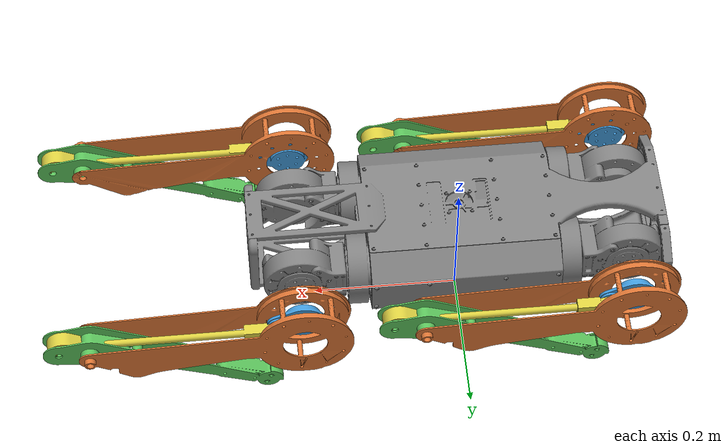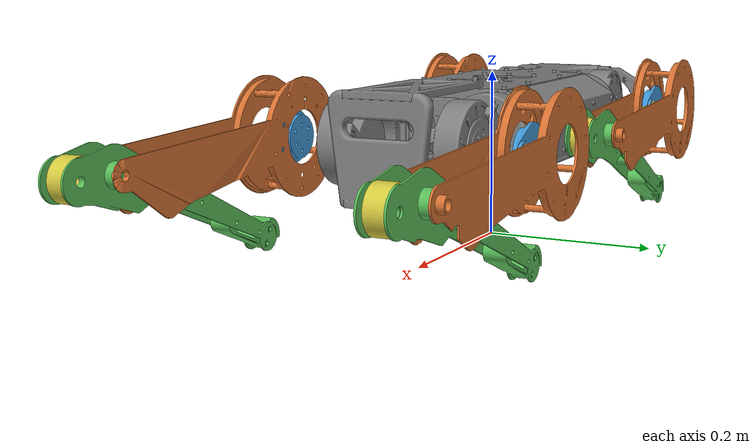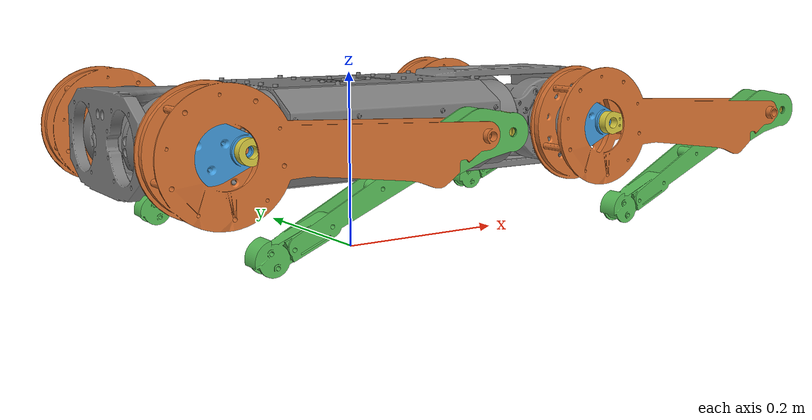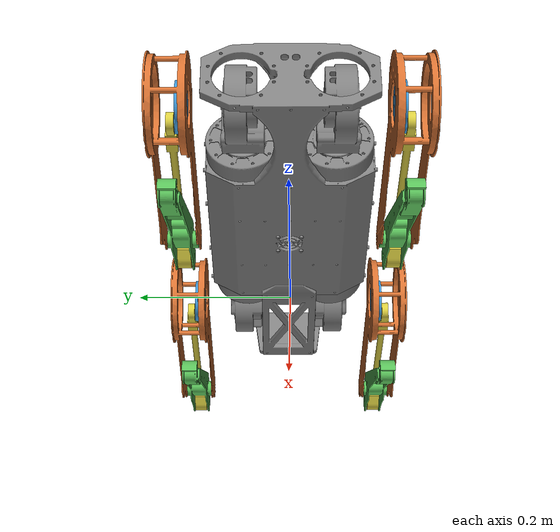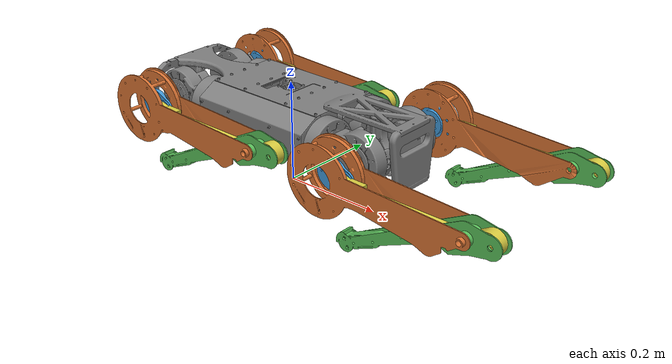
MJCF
<mujoco model="wojtek_legs_v627">
  <compiler angle="radian" autolimits="true" eulerseq="zyx" meshdir="../../meshes" />
  <default>
    <joint armature="0.01" damping="0.3" frictionloss="0.3" limited="true" />
    <geom conaffinity="15" condim="4" contype="1" friction="0.9 0.2 0.2" solref="0.001 2" />
    <motor ctrllimited="true" />
    <equality solref="0.001 2" />
    <default class="visual">
      <geom type="mesh" contype="0" conaffinity="0" group="2" density="0" material="grey" />
    </default>
    <default class="collision">
      <geom type="mesh" group="3" />
    </default>
  </default>
  <asset>
    <mesh name="base_link" file="base_link.stl" />
    <mesh name="first_link" file="first_link.stl" />
    <mesh name="second_link" file="second_link.stl" />
    <material name="grey" rgba="0.5 0.5 0.5 1.0" />
    <mesh name="vis_udo_A" file="legs_v627/vis_udo_A.stl" />
    <mesh name="vis_udo_B" file="legs_v627/vis_udo_B.stl" />
    <mesh name="vis_dzwignia_A" file="legs_v627/vis_dzwignia_A.stl" />
    <mesh name="vis_dzwignia_B" file="legs_v627/vis_dzwignia_B.stl" />
    <mesh name="vis_wodzik_A" file="legs_v627/vis_wodzik_A.stl" />
    <mesh name="vis_wodzik_B" file="legs_v627/vis_wodzik_B.stl" />
    <mesh name="vis_golen_A" file="legs_v627/vis_golen_A.stl" />
    <mesh name="vis_golen_B" file="legs_v627/vis_golen_B.stl" />
    <material name="m_udo" rgba="0.85 0.45 0.20 1" />
    <material name="m_dzwignia" rgba="0.25 0.60 0.85 1" />
    <material name="m_wodzik" rgba="0.85 0.80 0.25 1" />
    <material name="m_golen" rgba="0.35 0.75 0.35 1" />
    <texture name="grid" type="2d" builtin="checker" rgb1=".2 .3 .4" rgb2=".1 .2 .3" width="300" height="300" />
    <material name="grid" texture="grid" texrepeat="8 8" reflectance="0.1" />
  </asset>
  <worldbody>
    <body name="root" pos="0 0 0.08" quat="1 0 0 0">
      <freejoint name="root" />
      <inertial pos="-0.00692690993 7.05821983e-05 0.0601677531" mass="7.54375" diaginertia="0.164006 0.150387 0.0273804" />
      <!-- v6.27: korpus = M_ROBOT_KG 16.350 - nogi 8.806 kg; tensor Wojtka x0.401 -->
      <site name="imu" pos="0 0 0" size="0.00000001" />
      <geom class="visual" name="base_link_visual" mesh="base_link" quat="0 0 0 1" />
      <geom class="collision" name="base_link_collision" mesh="base_link" quat="0 0 0 1" />
      <geom class="visual" name="rear_left_first_link_visual" mesh="first_link" pos="-0.131 0.06 0.06" quat="0 0 -0.707107 0.707107" />
      <geom class="collision" name="rear_left_first_link_collision" mesh="first_link" pos="-0.131 0.06 0.06" quat="0 0 -0.707107 0.707107" />
      <geom class="visual" name="rear_right_first_link_visual" mesh="first_link" pos="-0.131 -0.06 0.06" quat="0 0 -0.707107 0.707107" />
      <geom class="collision" name="rear_right_first_link_collision" mesh="first_link" pos="-0.131 -0.06 0.06" quat="0 0 -0.707107 0.707107" />
      <geom class="visual" name="front_right_first_link_visual" mesh="first_link" pos="0.131 -0.06 0.06" quat="0.707107 -0.707107 0 0" />
      <geom class="collision" name="front_right_first_link_collision" mesh="first_link" pos="0.131 -0.06 0.06" quat="0.707107 -0.707107 0 0" />
      <geom class="visual" name="front_left_first_link_visual" mesh="first_link" pos="0.131 0.06 0.06" quat="0.707107 -0.707107 0 0" />
      <geom class="collision" name="front_left_first_link_collision" mesh="first_link" pos="0.131 0.06 0.06" quat="0.707107 -0.707107 0 0" />
      <body name="rear_left_second_link" pos="-0.162 0.06 0.06" quat="0 0 0.707107 0.707107">
        <inertial diaginertia="0.00075 0.000455 0.000455" mass="0.6" pos="0.055 0 0" quat="0.5 0.5 -0.5 0.5" />
        <joint name="rear_left_first_joint" axis="1 0 0" pos="0 0 0" damping="0.05" frictionloss="0.01" range="-3.1416 3.1416" />
        <geom class="visual" name="rear_left_second_link_visual" mesh="second_link" />
        <geom class="collision" name="rear_left_second_link_collision" mesh="second_link" />
        <body name="rear_left_third_link" pos="0.064 0 0.0668000048" quat="0 0 0 1">
          <inertial pos="0.0394156322 0.000858147547 0.0250979492" mass="1.0898013" fullinertia="0.00113131174 0.00915077731 0.00961974953 -0.000143718167 -9.20316273e-05 -4.05098865e-08" />
          <!-- masa silnikow + mocowania: `third_link` Wojtka (0.6 kg) jako DRUGI inertial nie istnieje w MJCF -> jest DOLICZONA w `props` (patrz RAPORT §2) -->
          <joint name="rear_left_second_joint" axis="0 0 -1" pos="0 0 0" range="-2.69478837 -1.53588974" armature="0.02" damping="0.05" frictionloss="0.2" />
          <site name="rear_left_P1" pos="0 0 0" size="0.004" group="4" />
          <geom class="visual" name="rear_left_udo_visual" type="mesh" mesh="vis_udo_B" material="m_udo" />
          <body name="rear_left_fourth_link" pos="0 0 0">
            <inertial pos="0.0138922194 4.11188856e-09 0.0149449436" mass="0.102018" fullinertia="2.0275739e-05 4.6477108e-05 4.996135e-05 5.59160128e-12 -7.4602413e-06 -1.49546912e-13" />
            <joint name="rear_left_third_joint" axis="0 0 1" pos="0 0 0" range="-2.83266938 -0.244346095" armature="0.02" damping="0.05" frictionloss="0.2" />
            <geom class="visual" name="rear_left_dzwignia_visual" type="mesh" mesh="vis_dzwignia_B" material="m_dzwignia" />
            <body name="rear_left_fifth_link" pos="0.0329880602 0 0">
              <inertial pos="0.200477529 4.01515853e-13 0.0255000221" mass="0.07891" fullinertia="7.59801241e-06 0.00114915708 0.00115302161 -7.61011458e-18 2.99430464e-10 -5.3572425e-18" />
              <joint name="rear_left_fourth_joint" axis="0 0 -1" pos="0 0 0" limited="false" damping="0.01" frictionloss="1.2586" />
              <geom class="visual" name="rear_left_wodzik_visual" type="mesh" mesh="vis_wodzik_B" material="m_wodzik" />
              <site name="rear_left_chain_close_a" pos="0.290952718 0 0" size="0.005" group="4" />
              <body name="rear_left_chain_close_a_link" pos="0.290952718 0 0" />
            </body>
          </body>
          <body name="rear_left_sixth_link" pos="0.288242496 0 0">
            <inertial pos="-0.0695813154 0.0314282279 0.0253786195" mass="0.33082967" fullinertia="0.000484073385 0.00284756885 0.00324257878 0.00105991563 -1.89937798e-05 6.52345872e-06" />
            <joint name="rear_left_fifth_joint" axis="0 0 -1" pos="0 0 0" limited="false" damping="0.01" frictionloss="1.4784" />
            <geom class="visual" name="rear_left_golen_visual" type="mesh" mesh="vis_golen_B" material="m_golen" />
            <site name="rear_left_foot" pos="-0.2377128 0.1022437 0" size="0.005" group="4" />
            <body name="rear_left_foot_link" pos="0.0418229679 0 0">
              <inertial pos="0 0 0" mass="4e-06" diaginertia="1.3225e-08 1.3225e-08 2.2e-09" />
              <joint name="rear_left_foot_joint" axis="0 0 1" pos="0 0 0" limited="false" armature="1e-4" damping="0.01" frictionloss="0" />
              <site name="rear_left_chain_close_b" pos="0 0 0" size="0.005" group="4" />
            </body>
          </body>
        </body>
      </body>
      <body name="rear_right_second_link" pos="-0.162 -0.06 0.06" quat="0 0 -0.707107 0.707107">
        <inertial diaginertia="0.00075 0.000455 0.000455" mass="0.6" pos="0.055 0 0" quat="0.5 0.5 -0.5 0.5" />
        <joint name="rear_right_first_joint" axis="1 0 0" pos="0 0 0" damping="0.05" frictionloss="0.01" range="-3.1416 3.1416" />
        <geom class="visual" name="rear_right_second_link_visual" mesh="second_link" />
        <geom class="collision" name="rear_right_second_link_collision" mesh="second_link" />
        <body name="rear_right_third_link" pos="0.064 0 0.0668000048" quat="0 0 0 1">
          <inertial pos="0.0394156322 -0.000858147547 0.0250979492" mass="1.0898013" fullinertia="0.00113131174 0.00915077731 0.00961974953 0.000143718167 -9.20316273e-05 4.05098865e-08" />
          <!-- masa silnikow + mocowania: `third_link` Wojtka (0.6 kg) jako DRUGI inertial nie istnieje w MJCF -> jest DOLICZONA w `props` (patrz RAPORT §2) -->
          <joint name="rear_right_second_joint" axis="0 0 1" pos="0 0 0" range="-2.69478837 -1.53588974" armature="0.02" damping="0.05" frictionloss="0.2" />
          <site name="rear_right_P1" pos="0 0 0" size="0.004" group="4" />
          <geom class="visual" name="rear_right_udo_visual" type="mesh" mesh="vis_udo_A" material="m_udo" />
          <body name="rear_right_fourth_link" pos="0 0 0">
            <inertial pos="0.0138922194 -4.11188856e-09 0.0149449436" mass="0.102018" fullinertia="2.0275739e-05 4.6477108e-05 4.996135e-05 -5.59160128e-12 -7.4602413e-06 1.49546912e-13" />
            <joint name="rear_right_third_joint" axis="0 0 -1" pos="0 0 0" range="-2.83266938 -0.244346095" armature="0.02" damping="0.05" frictionloss="0.2" />
            <geom class="visual" name="rear_right_dzwignia_visual" type="mesh" mesh="vis_dzwignia_A" material="m_dzwignia" />
            <body name="rear_right_fifth_link" pos="0.0329880602 0 0">
              <inertial pos="0.200477529 -4.01515853e-13 0.0255000221" mass="0.07891" fullinertia="7.59801241e-06 0.00114915708 0.00115302161 7.61011458e-18 2.99430464e-10 5.3572425e-18" />
              <joint name="rear_right_fourth_joint" axis="0 0 -1" pos="0 0 0" limited="false" damping="0.01" frictionloss="1.2586" />
              <geom class="visual" name="rear_right_wodzik_visual" type="mesh" mesh="vis_wodzik_A" material="m_wodzik" />
              <site name="rear_right_chain_close_a" pos="0.290952718 0 0" size="0.005" group="4" />
              <body name="rear_right_chain_close_a_link" pos="0.290952718 0 0" />
            </body>
          </body>
          <body name="rear_right_sixth_link" pos="0.288242496 0 0">
            <inertial pos="-0.0695813154 -0.0314282279 0.0253786195" mass="0.33082967" fullinertia="0.000484073385 0.00284756885 0.00324257878 -0.00105991563 -1.89937798e-05 -6.52345872e-06" />
            <joint name="rear_right_fifth_joint" axis="0 0 -1" pos="0 0 0" limited="false" damping="0.01" frictionloss="1.4784" />
            <geom class="visual" name="rear_right_golen_visual" type="mesh" mesh="vis_golen_A" material="m_golen" />
            <site name="rear_right_foot" pos="-0.2377128 -0.1022437 0" size="0.005" group="4" />
            <body name="rear_right_foot_link" pos="0.0418229679 0 0">
              <inertial pos="0 0 0" mass="4e-06" diaginertia="1.3225e-08 1.3225e-08 2.2e-09" />
              <joint name="rear_right_foot_joint" axis="0 0 1" pos="0 0 0" limited="false" armature="1e-4" damping="0.01" frictionloss="0" />
              <site name="rear_right_chain_close_b" pos="0 0 0" size="0.005" group="4" />
            </body>
          </body>
        </body>
      </body>
      <body name="front_right_second_link" pos="0.162 -0.06 0.06" quat="0.707107 0.707107 0 0">
        <inertial diaginertia="0.00075 0.000455 0.000455" mass="0.6" pos="0.055 0 0" quat="0.5 0.5 -0.5 0.5" />
        <joint name="front_right_first_joint" axis="1 0 0" pos="0 0 0" damping="0.05" frictionloss="0.01" range="-3.1416 3.1416" />
        <geom class="visual" name="front_right_second_link_visual" mesh="second_link" />
        <geom class="collision" name="front_right_second_link_collision" mesh="second_link" />
        <body name="front_right_third_link" pos="0.064 0 0.0668000048" quat="1 0 0 0">
          <inertial pos="0.0394156322 -0.000858147547 0.0250979492" mass="1.0898013" fullinertia="0.00113131174 0.00915077731 0.00961974953 0.000143718167 -9.20316273e-05 4.05098865e-08" />
          <!-- masa silnikow + mocowania: `third_link` Wojtka (0.6 kg) jako DRUGI inertial nie istnieje w MJCF -> jest DOLICZONA w `props` (patrz RAPORT §2) -->
          <joint name="front_right_second_joint" axis="0 0 -1" pos="0 0 0" range="1.53588974 2.69478837" armature="0.02" damping="0.05" frictionloss="0.2" />
          <site name="front_right_P1" pos="0 0 0" size="0.004" group="4" />
          <geom class="visual" name="front_right_udo_visual" type="mesh" mesh="vis_udo_A" material="m_udo" />
          <body name="front_right_fourth_link" pos="0 0 0">
            <inertial pos="0.0138922194 -4.11188856e-09 0.0149449436" mass="0.102018" fullinertia="2.0275739e-05 4.6477108e-05 4.996135e-05 -5.59160128e-12 -7.4602413e-06 1.49546912e-13" />
            <joint name="front_right_third_joint" axis="0 0 1" pos="0 0 0" range="0.244346095 2.83266938" armature="0.02" damping="0.05" frictionloss="0.2" />
            <geom class="visual" name="front_right_dzwignia_visual" type="mesh" mesh="vis_dzwignia_A" material="m_dzwignia" />
            <body name="front_right_fifth_link" pos="0.0329880602 0 0">
              <inertial pos="0.200477529 -4.01515853e-13 0.0255000221" mass="0.07891" fullinertia="7.59801241e-06 0.00114915708 0.00115302161 7.61011458e-18 2.99430464e-10 5.3572425e-18" />
              <joint name="front_right_fourth_joint" axis="0 0 -1" pos="0 0 0" limited="false" damping="0.01" frictionloss="1.2586" />
              <geom class="visual" name="front_right_wodzik_visual" type="mesh" mesh="vis_wodzik_A" material="m_wodzik" />
              <site name="front_right_chain_close_a" pos="0.290952718 0 0" size="0.005" group="4" />
              <body name="front_right_chain_close_a_link" pos="0.290952718 0 0" />
            </body>
          </body>
          <body name="front_right_sixth_link" pos="0.288242496 0 0">
            <inertial pos="-0.0695813154 -0.0314282279 0.0253786195" mass="0.33082967" fullinertia="0.000484073385 0.00284756885 0.00324257878 -0.00105991563 -1.89937798e-05 -6.52345872e-06" />
            <joint name="front_right_fifth_joint" axis="0 0 -1" pos="0 0 0" limited="false" damping="0.01" frictionloss="1.4784" />
            <geom class="visual" name="front_right_golen_visual" type="mesh" mesh="vis_golen_A" material="m_golen" />
            <site name="front_right_foot" pos="-0.2377128 -0.1022437 0" size="0.005" group="4" />
            <body name="front_right_foot_link" pos="0.0418229679 0 0">
              <inertial pos="0 0 0" mass="4e-06" diaginertia="1.3225e-08 1.3225e-08 2.2e-09" />
              <joint name="front_right_foot_joint" axis="0 0 1" pos="0 0 0" limited="false" armature="1e-4" damping="0.01" frictionloss="0" />
              <site name="front_right_chain_close_b" pos="0 0 0" size="0.005" group="4" />
            </body>
          </body>
        </body>
      </body>
      <body name="front_left_second_link" pos="0.162 0.06 0.06" quat="0.707107 -0.707107 0 0">
        <inertial diaginertia="0.00075 0.000455 0.000455" mass="0.6" pos="0.055 0 0" quat="0.5 0.5 -0.5 0.5" />
        <joint name="front_left_first_joint" axis="1 0 0" pos="0 0 0" damping="0.05" frictionloss="0.01" range="-3.1416 3.1416" />
        <geom class="visual" name="front_left_second_link_visual" mesh="second_link" />
        <geom class="collision" name="front_left_second_link_collision" mesh="second_link" />
        <body name="front_left_third_link" pos="0.064 0 0.0668000048" quat="1 0 0 0">
          <inertial pos="0.0394156322 0.000858147547 0.0250979492" mass="1.0898013" fullinertia="0.00113131174 0.00915077731 0.00961974953 -0.000143718167 -9.20316273e-05 -4.05098865e-08" />
          <!-- masa silnikow + mocowania: `third_link` Wojtka (0.6 kg) jako DRUGI inertial nie istnieje w MJCF -> jest DOLICZONA w `props` (patrz RAPORT §2) -->
          <joint name="front_left_second_joint" axis="0 0 1" pos="0 0 0" range="1.53588974 2.69478837" armature="0.02" damping="0.05" frictionloss="0.2" />
          <site name="front_left_P1" pos="0 0 0" size="0.004" group="4" />
          <geom class="visual" name="front_left_udo_visual" type="mesh" mesh="vis_udo_B" material="m_udo" />
          <body name="front_left_fourth_link" pos="0 0 0">
            <inertial pos="0.0138922194 4.11188856e-09 0.0149449436" mass="0.102018" fullinertia="2.0275739e-05 4.6477108e-05 4.996135e-05 5.59160128e-12 -7.4602413e-06 -1.49546912e-13" />
            <joint name="front_left_third_joint" axis="0 0 -1" pos="0 0 0" range="0.244346095 2.83266938" armature="0.02" damping="0.05" frictionloss="0.2" />
            <geom class="visual" name="front_left_dzwignia_visual" type="mesh" mesh="vis_dzwignia_B" material="m_dzwignia" />
            <body name="front_left_fifth_link" pos="0.0329880602 0 0">
              <inertial pos="0.200477529 4.01515853e-13 0.0255000221" mass="0.07891" fullinertia="7.59801241e-06 0.00114915708 0.00115302161 -7.61011458e-18 2.99430464e-10 -5.3572425e-18" />
              <joint name="front_left_fourth_joint" axis="0 0 -1" pos="0 0 0" limited="false" damping="0.01" frictionloss="1.2586" />
              <geom class="visual" name="front_left_wodzik_visual" type="mesh" mesh="vis_wodzik_B" material="m_wodzik" />
              <site name="front_left_chain_close_a" pos="0.290952718 0 0" size="0.005" group="4" />
              <body name="front_left_chain_close_a_link" pos="0.290952718 0 0" />
            </body>
          </body>
          <body name="front_left_sixth_link" pos="0.288242496 0 0">
            <inertial pos="-0.0695813154 0.0314282279 0.0253786195" mass="0.33082967" fullinertia="0.000484073385 0.00284756885 0.00324257878 0.00105991563 -1.89937798e-05 6.52345872e-06" />
            <joint name="front_left_fifth_joint" axis="0 0 -1" pos="0 0 0" limited="false" damping="0.01" frictionloss="1.4784" />
            <geom class="visual" name="front_left_golen_visual" type="mesh" mesh="vis_golen_B" material="m_golen" />
            <site name="front_left_foot" pos="-0.2377128 0.1022437 0" size="0.005" group="4" />
            <body name="front_left_foot_link" pos="0.0418229679 0 0">
              <inertial pos="0 0 0" mass="4e-06" diaginertia="1.3225e-08 1.3225e-08 2.2e-09" />
              <joint name="front_left_foot_joint" axis="0 0 1" pos="0 0 0" limited="false" armature="1e-4" damping="0.01" frictionloss="0" />
              <site name="front_left_chain_close_b" pos="0 0 0" size="0.005" group="4" />
            </body>
          </body>
        </body>
      </body>
    </body>
  </worldbody>
  <actuator>
    <motor name="rear_left_first_joint" joint="rear_left_first_joint" gear="1" ctrllimited="true" ctrlrange="-2.0 2.0" />
    <motor name="rear_left_second_joint" joint="rear_left_second_joint" gear="1" ctrllimited="true" ctrlrange="-22 22" />
    <motor name="rear_left_third_joint" joint="rear_left_third_joint" gear="1" ctrllimited="true" ctrlrange="-22 22" />
    <motor name="rear_right_first_joint" joint="rear_right_first_joint" gear="1" ctrllimited="true" ctrlrange="-2.0 2.0" />
    <motor name="rear_right_second_joint" joint="rear_right_second_joint" gear="1" ctrllimited="true" ctrlrange="-22 22" />
    <motor name="rear_right_third_joint" joint="rear_right_third_joint" gear="1" ctrllimited="true" ctrlrange="-22 22" />
    <motor name="front_right_first_joint" joint="front_right_first_joint" gear="1" ctrllimited="true" ctrlrange="-2.0 2.0" />
    <motor name="front_right_second_joint" joint="front_right_second_joint" gear="1" ctrllimited="true" ctrlrange="-22 22" />
    <motor name="front_right_third_joint" joint="front_right_third_joint" gear="1" ctrllimited="true" ctrlrange="-22 22" />
    <motor name="front_left_first_joint" joint="front_left_first_joint" gear="1" ctrllimited="true" ctrlrange="-2.0 2.0" />
    <motor name="front_left_second_joint" joint="front_left_second_joint" gear="1" ctrllimited="true" ctrlrange="-22 22" />
    <motor name="front_left_third_joint" joint="front_left_third_joint" gear="1" ctrllimited="true" ctrlrange="-22 22" />
  </actuator>
  <sensor>
    <actuatorpos name="rear_left_first_joint_p" actuator="rear_left_first_joint" />
    <actuatorvel name="rear_left_first_joint_v" actuator="rear_left_first_joint" />
    <actuatorfrc name="rear_left_first_joint_f" actuator="rear_left_first_joint" noise="0.001" />
    <actuatorpos name="rear_left_second_joint_p" actuator="rear_left_second_joint" />
    <actuatorvel name="rear_left_second_joint_v" actuator="rear_left_second_joint" />
    <actuatorfrc name="rear_left_second_joint_f" actuator="rear_left_second_joint" noise="0.001" />
    <actuatorpos name="rear_left_third_joint_p" actuator="rear_left_third_joint" />
    <actuatorvel name="rear_left_third_joint_v" actuator="rear_left_third_joint" />
    <actuatorfrc name="rear_left_third_joint_f" actuator="rear_left_third_joint" noise="0.001" />
    <actuatorpos name="rear_right_first_joint_p" actuator="rear_right_first_joint" />
    <actuatorvel name="rear_right_first_joint_v" actuator="rear_right_first_joint" />
    <actuatorfrc name="rear_right_first_joint_f" actuator="rear_right_first_joint" noise="0.001" />
    <actuatorpos name="rear_right_second_joint_p" actuator="rear_right_second_joint" />
    <actuatorvel name="rear_right_second_joint_v" actuator="rear_right_second_joint" />
    <actuatorfrc name="rear_right_second_joint_f" actuator="rear_right_second_joint" noise="0.001" />
    <actuatorpos name="rear_right_third_joint_p" actuator="rear_right_third_joint" />
    <actuatorvel name="rear_right_third_joint_v" actuator="rear_right_third_joint" />
    <actuatorfrc name="rear_right_third_joint_f" actuator="rear_right_third_joint" noise="0.001" />
    <actuatorpos name="front_right_first_joint_p" actuator="front_right_first_joint" />
    <actuatorvel name="front_right_first_joint_v" actuator="front_right_first_joint" />
    <actuatorfrc name="front_right_first_joint_f" actuator="front_right_first_joint" noise="0.001" />
    <actuatorpos name="front_right_second_joint_p" actuator="front_right_second_joint" />
    <actuatorvel name="front_right_second_joint_v" actuator="front_right_second_joint" />
    <actuatorfrc name="front_right_second_joint_f" actuator="front_right_second_joint" noise="0.001" />
    <actuatorpos name="front_right_third_joint_p" actuator="front_right_third_joint" />
    <actuatorvel name="front_right_third_joint_v" actuator="front_right_third_joint" />
    <actuatorfrc name="front_right_third_joint_f" actuator="front_right_third_joint" noise="0.001" />
    <actuatorpos name="front_left_first_joint_p" actuator="front_left_first_joint" />
    <actuatorvel name="front_left_first_joint_v" actuator="front_left_first_joint" />
    <actuatorfrc name="front_left_first_joint_f" actuator="front_left_first_joint" noise="0.001" />
    <actuatorpos name="front_left_second_joint_p" actuator="front_left_second_joint" />
    <actuatorvel name="front_left_second_joint_v" actuator="front_left_second_joint" />
    <actuatorfrc name="front_left_second_joint_f" actuator="front_left_second_joint" noise="0.001" />
    <actuatorpos name="front_left_third_joint_p" actuator="front_left_third_joint" />
    <actuatorvel name="front_left_third_joint_v" actuator="front_left_third_joint" />
    <actuatorfrc name="front_left_third_joint_f" actuator="front_left_third_joint" noise="0.001" />
    <framequat name="orientation" objtype="site" objname="imu" noise="0.001" />
    <gyro name="angular-velocity" site="imu" noise="0.005" cutoff="34.9" />
    <accelerometer name="linear-acceleration" site="imu" />
  </sensor>
  <contact>
    <!-- para WOJTKA (jego abad w obrysie jego korpusu, przenikanie 63.7..80.5 mm POMIAR) — wyklucza ja rowniez ORYGINALNY wojtek.xml; nie dotyka naszego czworoboku -->
    <exclude name="ex_front_left_second_link_root" body1="front_left_second_link" body2="root" />
    <!-- przegub D: wodzik i golen sa polaczone PETLA (nie sa para rodzic-dziecko, wiec MuJoCo ich nie filtruje) — luz ruchowy z bramki 1 jest MNIEJSZY od bledu otoczek coacd -->
    <exclude name="ex_front_left_fifth_link_sixth_link" body1="front_left_fifth_link" body2="front_left_sixth_link" />
    <!-- para WOJTKA (jego abad w obrysie jego korpusu, przenikanie 63.7..80.5 mm POMIAR) — wyklucza ja rowniez ORYGINALNY wojtek.xml; nie dotyka naszego czworoboku -->
    <exclude name="ex_front_right_second_link_root" body1="front_right_second_link" body2="root" />
    <!-- przegub D: wodzik i golen sa polaczone PETLA (nie sa para rodzic-dziecko, wiec MuJoCo ich nie filtruje) — luz ruchowy z bramki 1 jest MNIEJSZY od bledu otoczek coacd -->
    <exclude name="ex_front_right_fifth_link_sixth_link" body1="front_right_fifth_link" body2="front_right_sixth_link" />
    <!-- para WOJTKA (jego abad w obrysie jego korpusu, przenikanie 63.7..80.5 mm POMIAR) — wyklucza ja rowniez ORYGINALNY wojtek.xml; nie dotyka naszego czworoboku -->
    <exclude name="ex_rear_left_second_link_root" body1="rear_left_second_link" body2="root" />
    <!-- przegub D: wodzik i golen sa polaczone PETLA (nie sa para rodzic-dziecko, wiec MuJoCo ich nie filtruje) — luz ruchowy z bramki 1 jest MNIEJSZY od bledu otoczek coacd -->
    <exclude name="ex_rear_left_fifth_link_sixth_link" body1="rear_left_fifth_link" body2="rear_left_sixth_link" />
    <!-- para WOJTKA (jego abad w obrysie jego korpusu, przenikanie 63.7..80.5 mm POMIAR) — wyklucza ja rowniez ORYGINALNY wojtek.xml; nie dotyka naszego czworoboku -->
    <exclude name="ex_rear_right_second_link_root" body1="rear_right_second_link" body2="root" />
    <!-- przegub D: wodzik i golen sa polaczone PETLA (nie sa para rodzic-dziecko, wiec MuJoCo ich nie filtruje) — luz ruchowy z bramki 1 jest MNIEJSZY od bledu otoczek coacd -->
    <exclude name="ex_rear_right_fifth_link_sixth_link" body1="rear_right_fifth_link" body2="rear_right_sixth_link" />
  </contact>
  <equality>
    <connect name="equality_sconstraint_front_left" site1="front_left_chain_close_b" site2="front_left_chain_close_a" active="true" />
    <connect name="equality_sconstraint_front_right" site1="front_right_chain_close_b" site2="front_right_chain_close_a" active="true" />
    <connect name="equality_sconstraint_rear_left" site1="rear_left_chain_close_b" site2="rear_left_chain_close_a" active="true" />
    <connect name="equality_sconstraint_rear_right" site1="rear_right_chain_close_b" site2="rear_right_chain_close_a" active="true" />
  </equality>
  <keyframe>
    <key name="stanie" qpos="0 0 0.359994599 1 0 0 0 0 -2.25954745 -2.00631532 -2.23915174 -2.04393848 0 0 -2.25954745 -2.00631532 2.23915174 2.04393848 0 0 2.25954745 2.00631532 2.23915174 2.04393848 0 0 2.25954745 2.00631532 -2.23915174 -2.04393848 0" />
  </keyframe>
</mujoco>
